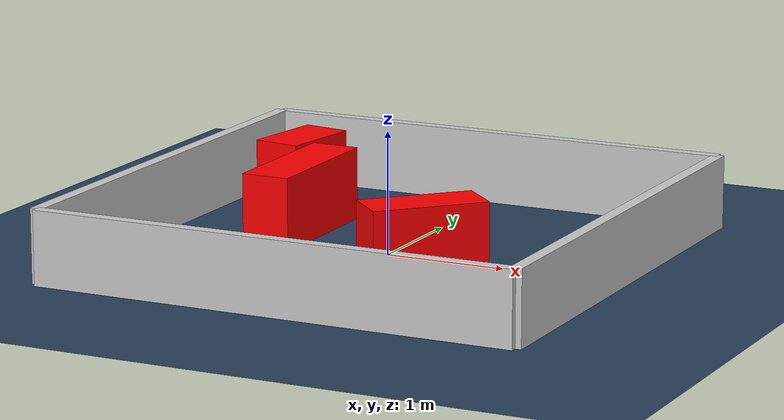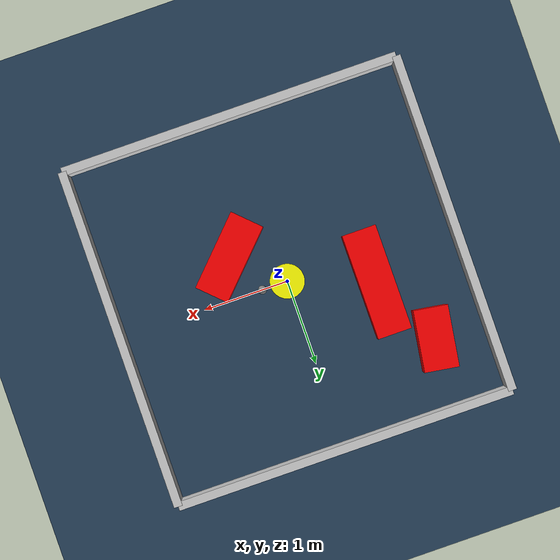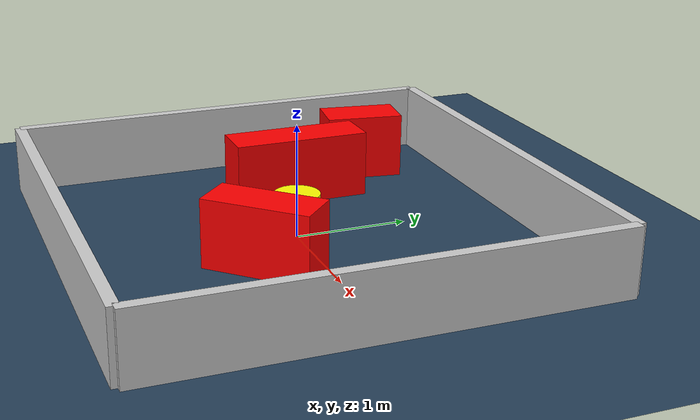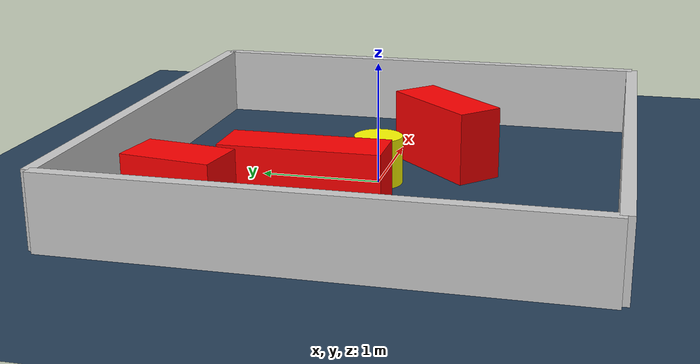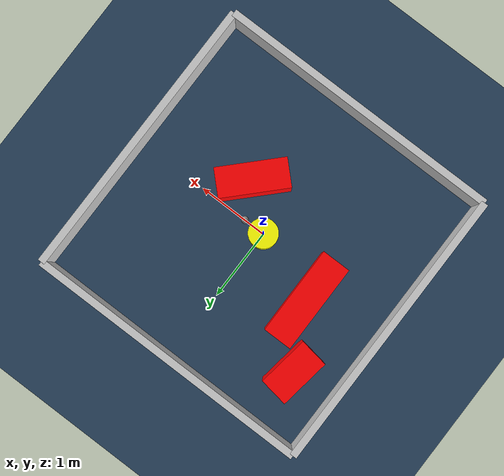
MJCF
<?xml version="1.0" ?>
<mujoco model="generated_environment">
  <option timestep="0.01" integrator="RK4" cone="elliptic"/>
  <default>
    <geom density="1"/>
  </default>
  <asset>
    <texture builtin="gradient" height="3072" rgb1="0.3 0.5 0.7" rgb2="0 0 0" type="skybox" width="512"/>
    <texture builtin="checker" height="300" mark="edge" markrgb="0.8 0.8 0.8" name="groundplane" rgb1="0.2 0.3 0.4" rgb2="0.1 0.2 0.3" type="2d" width="300"/>
    <material name="groundplane" reflectance="0.2" texrepeat="5 5" texture="groundplane" texuniform="true"/>
    <material name="robot" rgba="0.0 1.0 0.0 1"/>
  </asset>
  <worldbody>
    <light dir="0 0 -1" directional="true" pos="0 0 1.5"/>
    <geom condim="4" friction="1.0 0.005 0.001" material="groundplane" name="floor" size="0 0 0.05" type="plane"/>
    <body name="walls">
      <geom name="wall_1" condim="4" pos="-2.0 0.0 0.3" rgba="0.800000011920929 0.800000011920929 0.800000011920929 1.0" size="0.05 2.0 0.3" type="box"/>
      <geom name="wall_2" condim="4" pos="2.0 0.0 0.3" rgba="0.800000011920929 0.800000011920929 0.800000011920929 1.0" size="0.05 2.0 0.3" type="box"/>
      <geom name="wall_3" condim="4" pos="0.0 -2.0 0.3" rgba="0.800000011920929 0.800000011920929 0.800000011920929 1.0" size="2.0 0.05 0.3" type="box"/>
      <geom name="wall_4" condim="4" pos="0.0 2.0 0.3" rgba="0.800000011920929 0.800000011920929 0.800000011920929 1.0" size="2.0 0.05 0.3" type="box"/>
    </body>
    <body name="robot">
      <joint name="joint_x" type="slide" pos="0 0 0" axis="1 0 0"/>
      <joint name="joint_y" type="slide" pos="0 0 0" axis="0 1 0"/>
      <geom name="robot" type="sphere" pos="0.3 0.0 0.2" size="0.05" mass="5." friction="1.0 0.005 0.0001" condim="4" rgba="0.5 0.5 0.5 1.0"/>
      <site name="sensor_ball"/>
    </body>
    <body name="obstacle_movable_1">
      <geom name="obstacle_movable_1" condim="4" pos="0.0 0.0 0.2" euler="0 0 0.0" friction="1.0 0.005 0.001" rgba="1.0 1.0 0.0 1.0" size="0.2 0.2 0.0" type="cylinder" mass="0.1"/>
      <joint type="free"/>
    </body>
    <body name="obstacle_2_static">
      <geom name="obstacle_2_static" condim="4" pos="-1.3764888552539762 1.1668146070486396 0.3" euler="0 0 261.4544584465672" friction="1.0 0.005 0.001" rgba="1 0 0 1" size="0.3569965197483568 0.2 0.3" type="box"/>
    </body>
    <body name="obstacle_3_static">
      <geom name="obstacle_3_static" condim="4" pos="-0.9533330032964861 0.3416313504055297 0.3" euler="0 0 270.19255078519217" friction="1.0 0.005 0.001" rgba="1 0 0 1" size="0.6184050318430533 0.2 0.3" type="box"/>
    </body>
    <body name="obstacle_4_static">
      <geom name="obstacle_4_static" condim="4" pos="0.5302979596361945 -0.472176584786961 0.3" euler="0 0 45.762611713508086" friction="1.0 0.005 0.001" rgba="1 0 0 1" size="0.4737299066841407 0.2 0.3" type="box"/>
    </body>
  </worldbody>
  <actuator>
    <motor name="actuator_x" joint="joint_x" gear="1" ctrlrange="-1 1"/>
    <motor name="actuator_y" joint="joint_y" gear="1" ctrlrange="-1 1"/>
  </actuator>
</mujoco>
